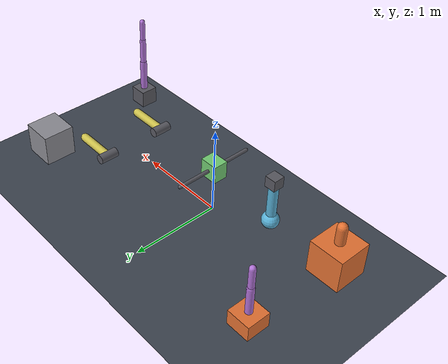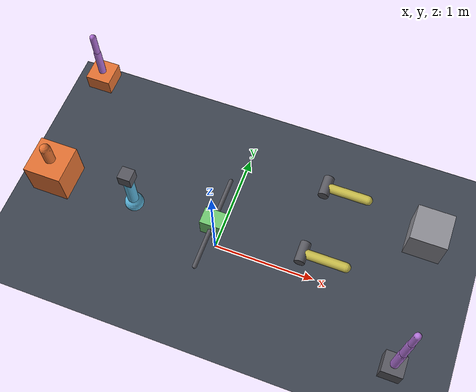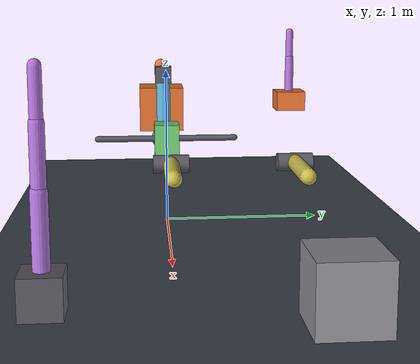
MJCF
<mujoco model="joint_types">
  <compiler angle="degree" autolimits="true"/>
  <option gravity="0 0 0"/>

  <visual>
    <headlight ambient="0.28 0.28 0.28" diffuse="0.45 0.45 0.45" specular="0.4 0.4 0.4"/>
    <quality shadowsize="2048" numslices="28" numstacks="16"/>
    <map znear="0.02" zfar="40"/>
  </visual>

  <asset>
    <texture name="grid" type="2d" builtin="checker" width="512" height="512"
             rgb1="0.19 0.21 0.25" rgb2="0.29 0.32 0.37"/>
    <material name="grid" texture="grid" texrepeat="1 1" texuniform="true"/>
    <material name="free" rgba="0.90 0.45 0.20 1" specular="0.5" shininess="0.6"/>
    <material name="ball" rgba="0.35 0.70 0.85 1" specular="0.5" shininess="0.6"/>
    <material name="slide" rgba="0.45 0.80 0.45 1" specular="0.5" shininess="0.6"/>
    <material name="hinge" rgba="0.80 0.75 0.30 1" specular="0.5" shininess="0.6"/>
    <material name="chain" rgba="0.70 0.45 0.85 1" specular="0.5" shininess="0.6"/>
    <material name="fixed" rgba="0.55 0.55 0.58 1" specular="0.2" shininess="0.3"/>
    <material name="anchor" rgba="0.35 0.35 0.38 1" specular="0.2" shininess="0.3"/>
  </asset>

  <worldbody>
    <light name="sun" type="directional" pos="2 -3 5" dir="-0.3 0.45 -1"
           diffuse="0.7 0.7 0.7" specular="0.3 0.3 0.3" castshadow="true"/>

    <geom name="floor" type="plane" size="0 0 0.05" material="grid"/>

    <body name="free_body" pos="-1.60 0 0.55">
      <freejoint name="free"/>
      <geom name="free_box" type="box" size="0.18 0.18 0.18" material="free"/>
      <geom name="free_nose" type="capsule" fromto="0 0 0.18 0 0 0.36" size="0.05"
            material="free"/>
    </body>

    <body name="ball_anchor" pos="-0.80 0 0.90">
      <geom name="ball_anchor" type="box" size="0.06 0.06 0.06" material="anchor"/>
      <body name="ball_body" pos="0 0 -0.28">
        <joint name="ball" type="ball"/>
        <geom name="ball_link" type="capsule" fromto="0 0 0.28 0 0 -0.20" size="0.05"
              material="ball"/>
        <geom name="ball_tip" type="sphere" pos="0 0 -0.20" size="0.09" material="ball"/>
      </body>
    </body>

    <body name="slide_rail" pos="0 0 0.55">
      <geom name="slide_rail" type="capsule" fromto="0 -0.45 0 0 0.45 0" size="0.02"
            material="anchor"/>
      <body name="slide_body">
        <joint name="slide" type="slide" axis="0 1 0" range="-0.35 0.35"/>
        <geom name="slide_block" type="box" size="0.10 0.08 0.10" material="slide"/>
      </body>
    </body>

    <body name="hinge_anchor" pos="0.85 0 0.55">
      <geom name="hinge_anchor" type="cylinder" pos="0 0 0" size="0.05 0.10" euler="90 0 0"
            material="anchor"/>
      <body name="hinge_body">
        <joint name="hinge_limited" type="hinge" axis="0 1 0" range="-60 60"/>
        <geom name="hinge_arm" type="capsule" fromto="0 0 0 0.40 0 0" size="0.045"
              material="hinge"/>
      </body>
    </body>
    <body name="hinge_free_anchor" pos="0.85 0.70 0.55">
      <geom name="hinge_free_anchor" type="cylinder" size="0.05 0.10" euler="90 0 0"
            material="anchor"/>
      <body name="hinge_free_body">
        <joint name="hinge_unlimited" type="hinge" axis="0 1 0"/>
        <geom name="hinge_free_arm" type="capsule" fromto="0 0 0 0.40 0 0" size="0.045"
              material="hinge"/>
      </body>
    </body>

    <body name="chain_root" pos="1.90 -0.60 0.20">
      <geom name="chain_base" type="box" size="0.10 0.10 0.10" material="anchor"/>
      <body name="chain_0" pos="0 0 0.10">
        <joint name="chain_0" type="hinge" axis="0 1 0" range="-90 90"/>
        <geom name="chain_0" type="capsule" fromto="0 0 0 0 0 0.35" size="0.04" material="chain"/>
        <body name="chain_1" pos="0 0 0.35">
          <joint name="chain_1" type="hinge" axis="0 1 0" range="-120 120"/>
          <geom name="chain_1" type="capsule" fromto="0 0 0 0 0 0.30" size="0.035"
                material="chain"/>
          <body name="chain_2" pos="0 0 0.30">
            <joint name="chain_2" type="hinge" axis="1 0 0" range="-120 120"/>
            <geom name="chain_2" type="capsule" fromto="0 0 0 0 0 0.24" size="0.03"
                  material="chain"/>
          </body>
        </body>
      </body>
    </body>

    <body name="free_chain" pos="-1.60 1.10 0.60">
      <freejoint name="free_chain"/>
      <geom name="free_chain_base" type="box" size="0.12 0.12 0.08" material="free"/>
      <body name="free_chain_0" pos="0 0 0.08">
        <joint name="free_chain_0" type="hinge" axis="0 1 0" range="-90 90"/>
        <geom name="free_chain_0" type="capsule" fromto="0 0 0 0 0 0.28" size="0.035"
              material="chain"/>
        <body name="free_chain_1" pos="0 0 0.28">
          <joint name="free_chain_1" type="hinge" axis="1 0 0" range="-90 90"/>
          <geom name="free_chain_1" type="capsule" fromto="0 0 0 0 0 0.22" size="0.03"
                material="chain"/>
        </body>
      </body>
    </body>

    <body name="welded" pos="1.90 0.75 0.18">
      <geom name="welded" type="box" size="0.18 0.18 0.18" material="fixed"/>
    </body>

    <camera name="joints" pos="0.15 -3.20 1.75" xyaxes="1 0 0 0 0.42 0.91"/>
  </worldbody>

  <actuator>
    <position name="hinge_pos" joint="hinge_limited" kp="8" ctrlrange="-1.05 1.05"/>
    <position name="slide_pos" joint="slide" kp="20" ctrlrange="-0.35 0.35"/>
  </actuator>
</mujoco>
